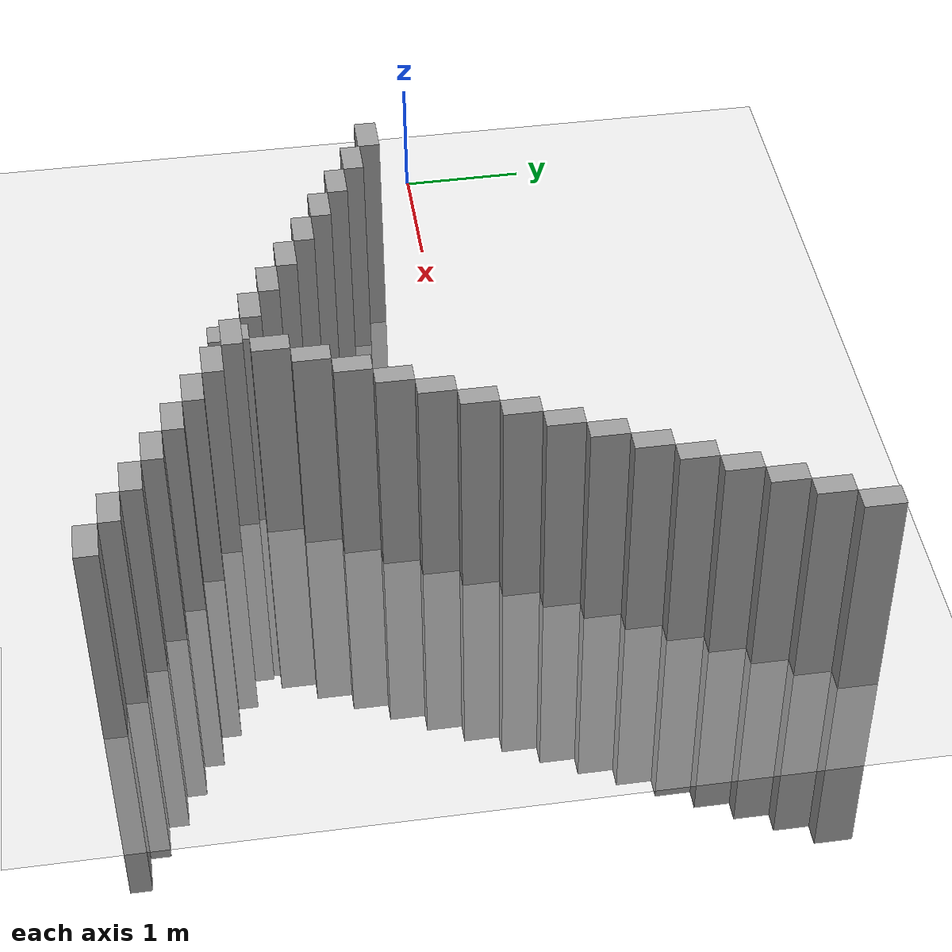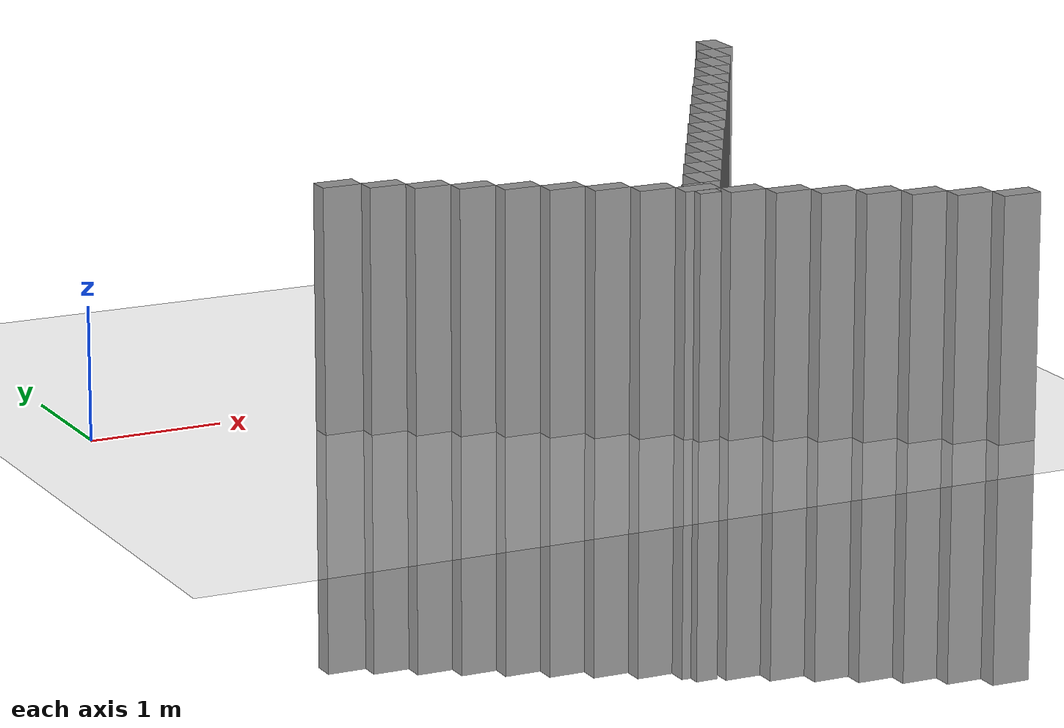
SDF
<sdf version="1.4">
 <world name="high_friction">
  <physics type="ode">
   <gravity>0 0 -9.81</gravity>
   <ode>
    <solver><type>quick</type><iters>250</iters><sor>1.</sor></solver>
    <constraints>
     <cfm>0</cfm>
     <erp>0.2</erp>
     <contact_max_correcting_vel>100</contact_max_correcting_vel>
     <contact_surface_layer>0</contact_surface_layer>
    </constraints>
   </ode>
   <real_time_update_rate>1000</real_time_update_rate>
   <max_step_size>0.001</max_step_size>
   <real_time_factor>1</real_time_factor>
  </physics>
  <include><uri>model://sun</uri></include>
  <model name="ground_plane">
   <static>true</static>
   <link name="link">
    <collision name="collision">
     <geometry><plane><normal>0 0 1</normal><size>100 100</size></plane></geometry>
     <surface>
      <contact><ode><kp>15000</kp><kd>10.0</kd><max_vel>10000.0</max_vel><min_depth>0.0</min_depth></ode></contact>
      <friction><ode><mu>100</mu><mu2>50</mu2></ode></friction>
     </surface>
    </collision>
    <visual name="visual">
     <cast_shadows>false</cast_shadows>
     <geometry><plane><normal>0 0 1</normal><size>100 100</size></plane></geometry>
     <material>
      <script><uri>file://media/materials/scripts/gazebo.material</uri><name>Gazebo/Grey</name></script>
     </material>
    </visual>
   </link>
  </model>
  <include><uri>model://stairs</uri><name>stairs</name><pose>0 -0.5 0 1.57 0 0</pose></include>
  <include><uri>model://stairs</uri><name>stairs</name><pose>4 -3.5 0 1.57 0 1.57</pose></include>
 </world>
</sdf>

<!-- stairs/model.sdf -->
<sdf version='1.7'>
  <model name='stairs'>
    <link name='Stairs'>
      <pose>3 2e-06 0 0 -0 0</pose>
      <self_collide>0</self_collide>
      <enable_wind>0</enable_wind>
      <kinematic>0</kinematic>
      <gravity>1</gravity>
      <inertial>
        <mass>1</mass>
        <pose>0 0 0 0 -0 0</pose>
        <inertia>
          <ixx>1</ixx>
          <ixy>0</ixy>
          <ixz>0</ixz>
          <iyy>1</iyy>
          <iyz>0</iyz>
          <izz>1</izz>
        </inertia>
      </inertial>
      <scale>1 1 1</scale>
      <visual name='Stairs_Visual_14'>
        <pose>2.6775 0 2.1875 0 -0 1.5708</pose>
        <geometry>
          <box>
            <size>3.66 0.28125 0.15625</size>
          </box>
        </geometry>
        <material>
          <script>
            <uri>file://media/materials/scripts/gazebo.material</uri>
            <name>Gazebo/Grey</name>
          </script>
          <ambient>1 1 1 1</ambient>
          <shader type='pixel'>
            <normal_map>__default__</normal_map>
          </shader>
          <diffuse>0.7 0.7 0.7 1</diffuse>
          <specular>0.01 0.01 0.01 1</specular>
          <emissive>0 0 0 1</emissive>
        </material>
        <meta>
          <layer>0</layer>
        </meta>
        <transparency>0</transparency>
        <cast_shadows>1</cast_shadows>
      </visual>
      <visual name='Stairs_Visual_7'>
        <pose>0.70875 0 1.09375 0 -0 1.5708</pose>
        <geometry>
          <box>
            <size>3.66 0.28125 0.15625</size>
          </box>
        </geometry>
        <material>
          <script>
            <uri>file://media/materials/scripts/gazebo.material</uri>
            <name>Gazebo/Grey</name>
          </script>
          <ambient>1 1 1 1</ambient>
          <shader type='pixel'>
            <normal_map>__default__</normal_map>
          </shader>
          <diffuse>0.7 0.7 0.7 1</diffuse>
          <specular>0.01 0.01 0.01 1</specular>
          <emissive>0 0 0 1</emissive>
        </material>
        <meta>
          <layer>0</layer>
        </meta>
        <transparency>0</transparency>
        <cast_shadows>1</cast_shadows>
      </visual>
      <visual name='Stairs_Visual_10'>
        <pose>1.5525 0 1.5625 0 -0 1.5708</pose>
        <geometry>
          <box>
            <size>3.66 0.28125 0.15625</size>
          </box>
        </geometry>
        <material>
          <script>
            <uri>file://media/materials/scripts/gazebo.material</uri>
            <name>Gazebo/Grey</name>
          </script>
          <ambient>1 1 1 1</ambient>
          <shader type='pixel'>
            <normal_map>__default__</normal_map>
          </shader>
          <diffuse>0.7 0.7 0.7 1</diffuse>
          <specular>0.01 0.01 0.01 1</specular>
          <emissive>0 0 0 1</emissive>
        </material>
        <meta>
          <layer>0</layer>
        </meta>
        <transparency>0</transparency>
        <cast_shadows>1</cast_shadows>
      </visual>
      <visual name='Stairs_Visual_11'>
        <pose>1.83375 0 1.71875 0 -0 1.5708</pose>
        <geometry>
          <box>
            <size>3.66 0.28125 0.15625</size>
          </box>
        </geometry>
        <material>
          <script>
            <uri>file://media/materials/scripts/gazebo.material</uri>
            <name>Gazebo/Grey</name>
          </script>
          <ambient>1 1 1 1</ambient>
          <shader type='pixel'>
            <normal_map>__default__</normal_map>
          </shader>
          <diffuse>0.7 0.7 0.7 1</diffuse>
          <specular>0.01 0.01 0.01 1</specular>
          <emissive>0 0 0 1</emissive>
        </material>
        <meta>
          <layer>0</layer>
        </meta>
        <transparency>0</transparency>
        <cast_shadows>1</cast_shadows>
      </visual>
      <visual name='Stairs_Visual_1'>
        <pose>-0.97875 0 0.15625 0 -0 1.5708</pose>
        <geometry>
          <box>
            <size>3.66 0.28125 0.15625</size>
          </box>
        </geometry>
        <material>
          <script>
            <uri>file://media/materials/scripts/gazebo.material</uri>
            <name>Gazebo/Grey</name>
          </script>
          <ambient>1 1 1 1</ambient>
          <shader type='pixel'>
            <normal_map>__default__</normal_map>
          </shader>
          <diffuse>0.7 0.7 0.7 1</diffuse>
          <specular>0.01 0.01 0.01 1</specular>
          <emissive>0 0 0 1</emissive>
        </material>
        <meta>
          <layer>0</layer>
        </meta>
        <transparency>0</transparency>
        <cast_shadows>1</cast_shadows>
      </visual>
      <visual name='Stairs_Visual_8'>
        <pose>0.99 0 1.25 0 -0 1.5708</pose>
        <geometry>
          <box>
            <size>3.66 0.28125 0.15625</size>
          </box>
        </geometry>
        <material>
          <script>
            <uri>file://media/materials/scripts/gazebo.material</uri>
            <name>Gazebo/Grey</name>
          </script>
          <ambient>1 1 1 1</ambient>
          <shader type='pixel'>
            <normal_map>__default__</normal_map>
          </shader>
          <diffuse>0.7 0.7 0.7 1</diffuse>
          <specular>0.01 0.01 0.01 1</specular>
          <emissive>0 0 0 1</emissive>
        </material>
        <meta>
          <layer>0</layer>
        </meta>
        <transparency>0</transparency>
        <cast_shadows>1</cast_shadows>
      </visual>
      <visual name='Stairs_Visual_2'>
        <pose>-0.6975 0 0.3125 0 -0 1.5708</pose>
        <geometry>
          <box>
            <size>3.66 0.28125 0.15625</size>
          </box>
        </geometry>
        <material>
          <script>
            <uri>file://media/materials/scripts/gazebo.material</uri>
            <name>Gazebo/Grey</name>
          </script>
          <ambient>1 1 1 1</ambient>
          <shader type='pixel'>
            <normal_map>__default__</normal_map>
          </shader>
          <diffuse>0.7 0.7 0.7 1</diffuse>
          <specular>0.01 0.01 0.01 1</specular>
          <emissive>0 0 0 1</emissive>
        </material>
        <meta>
          <layer>0</layer>
        </meta>
        <transparency>0</transparency>
        <cast_shadows>1</cast_shadows>
      </visual>
      <visual name='Stairs_Visual_0'>
        <pose>-1.27 0 0.005 0 -0 1.5708</pose>
        <geometry>
          <box>
            <size>3.66 0.3 0.17</size>
          </box>
        </geometry>
        <material>
          <script>
            <uri>file://media/materials/scripts/gazebo.material</uri>
            <name>Gazebo/Grey</name>
          </script>
          <ambient>1 1 1 1</ambient>
          <shader type='pixel'>
            <normal_map>__default__</normal_map>
          </shader>
          <diffuse>0.7 0.7 0.7 1</diffuse>
          <specular>0.01 0.01 0.01 1</specular>
          <emissive>0 0 0 1</emissive>
        </material>
        <meta>
          <layer>0</layer>
        </meta>
        <transparency>0</transparency>
        <cast_shadows>1</cast_shadows>
      </visual>
      <visual name='Stairs_Visual_12'>
        <pose>2.115 0 1.875 0 -0 1.5708</pose>
        <geometry>
          <box>
            <size>3.66 0.28125 0.15625</size>
          </box>
        </geometry>
        <material>
          <script>
            <uri>file://media/materials/scripts/gazebo.material</uri>
            <name>Gazebo/Grey</name>
          </script>
          <ambient>1 1 1 1</ambient>
          <shader type='pixel'>
            <normal_map>__default__</normal_map>
          </shader>
          <diffuse>0.7 0.7 0.7 1</diffuse>
          <specular>0.01 0.01 0.01 1</specular>
          <emissive>0 0 0 1</emissive>
        </material>
        <meta>
          <layer>0</layer>
        </meta>
        <transparency>0</transparency>
        <cast_shadows>1</cast_shadows>
      </visual>
      <visual name='Stairs_Visual_9'>
        <pose>1.27125 0 1.40625 0 -0 1.5708</pose>
        <geometry>
          <box>
            <size>3.66 0.28125 0.15625</size>
          </box>
        </geometry>
        <material>
          <script>
            <uri>file://media/materials/scripts/gazebo.material</uri>
            <name>Gazebo/Grey</name>
          </script>
          <ambient>1 1 1 1</ambient>
          <shader type='pixel'>
            <normal_map>__default__</normal_map>
          </shader>
          <diffuse>0.7 0.7 0.7 1</diffuse>
          <specular>0.01 0.01 0.01 1</specular>
          <emissive>0 0 0 1</emissive>
        </material>
        <meta>
          <layer>0</layer>
        </meta>
        <transparency>0</transparency>
        <cast_shadows>1</cast_shadows>
      </visual>
      <visual name='Stairs_Visual_6'>
        <pose>0.4275 0 0.9375 0 -0 1.5708</pose>
        <geometry>
          <box>
            <size>3.66 0.28125 0.15625</size>
          </box>
        </geometry>
        <material>
          <script>
            <uri>file://media/materials/scripts/gazebo.material</uri>
            <name>Gazebo/Grey</name>
          </script>
          <ambient>1 1 1 1</ambient>
          <shader type='pixel'>
            <normal_map>__default__</normal_map>
          </shader>
          <diffuse>0.7 0.7 0.7 1</diffuse>
          <specular>0.01 0.01 0.01 1</specular>
          <emissive>0 0 0 1</emissive>
        </material>
        <meta>
          <layer>0</layer>
        </meta>
        <transparency>0</transparency>
        <cast_shadows>1</cast_shadows>
      </visual>
      <visual name='Stairs_Visual_13'>
        <pose>2.39625 0 2.03125 0 -0 1.5708</pose>
        <geometry>
          <box>
            <size>3.66 0.28125 0.15625</size>
          </box>
        </geometry>
        <material>
          <script>
            <uri>file://media/materials/scripts/gazebo.material</uri>
            <name>Gazebo/Grey</name>
          </script>
          <ambient>1 1 1 1</ambient>
          <shader type='pixel'>
            <normal_map>__default__</normal_map>
          </shader>
          <diffuse>0.7 0.7 0.7 1</diffuse>
          <specular>0.01 0.01 0.01 1</specular>
          <emissive>0 0 0 1</emissive>
        </material>
        <meta>
          <layer>0</layer>
        </meta>
        <transparency>0</transparency>
        <cast_shadows>1</cast_shadows>
      </visual>
      <visual name='Stairs_Visual_4'>
        <pose>-0.135 0 0.625 0 -0 1.5708</pose>
        <geometry>
          <box>
            <size>3.66 0.28125 0.15625</size>
          </box>
        </geometry>
        <material>
          <script>
            <uri>file://media/materials/scripts/gazebo.material</uri>
            <name>Gazebo/Grey</name>
          </script>
          <ambient>1 1 1 1</ambient>
          <shader type='pixel'>
            <normal_map>__default__</normal_map>
          </shader>
          <diffuse>0.7 0.7 0.7 1</diffuse>
          <specular>0.01 0.01 0.01 1</specular>
          <emissive>0 0 0 1</emissive>
        </material>
        <meta>
          <layer>0</layer>
        </meta>
        <transparency>0</transparency>
        <cast_shadows>1</cast_shadows>
      </visual>
      <visual name='Stairs_Visual_5'>
        <pose>0.14625 0 0.78125 0 -0 1.5708</pose>
        <geometry>
          <box>
            <size>3.66 0.28125 0.15625</size>
          </box>
        </geometry>
        <material>
          <script>
            <uri>file://media/materials/scripts/gazebo.material</uri>
            <name>Gazebo/Grey</name>
          </script>
          <ambient>1 1 1 1</ambient>
          <shader type='pixel'>
            <normal_map>__default__</normal_map>
          </shader>
          <diffuse>0.7 0.7 0.7 1</diffuse>
          <specular>0.01 0.01 0.01 1</specular>
          <emissive>0 0 0 1</emissive>
        </material>
        <meta>
          <layer>0</layer>
        </meta>
        <transparency>0</transparency>
        <cast_shadows>1</cast_shadows>
      </visual>
      <visual name='Stairs_Visual_15'>
        <pose>2.969 0 2.35 0 -0 1.5708</pose>
        <geometry>
          <box>
            <size>3.66 0.3 0.17</size>
          </box>
        </geometry>
        <material>
          <script>
            <uri>file://media/materials/scripts/gazebo.material</uri>
            <name>Gazebo/Grey</name>
          </script>
          <ambient>1 1 1 1</ambient>
          <shader type='pixel'>
            <normal_map>__default__</normal_map>
          </shader>
          <diffuse>0.7 0.7 0.7 1</diffuse>
          <specular>0.01 0.01 0.01 1</specular>
          <emissive>0 0 0 1</emissive>
        </material>
        <meta>
          <layer>0</layer>
        </meta>
        <transparency>0</transparency>
        <cast_shadows>1</cast_shadows>
      </visual>
      <visual name='Stairs_Visual_3'>
        <pose>-0.41625 0 0.46875 0 -0 1.5708</pose>
        <geometry>
          <box>
            <size>3.66 0.28125 0.15625</size>
          </box>
        </geometry>
        <material>
          <script>
            <uri>file://media/materials/scripts/gazebo.material</uri>
            <name>Gazebo/Grey</name>
          </script>
          <ambient>1 1 1 1</ambient>
          <shader type='pixel'>
            <normal_map>__default__</normal_map>
          </shader>
          <diffuse>0.7 0.7 0.7 1</diffuse>
          <specular>0.01 0.01 0.01 1</specular>
          <emissive>0 0 0 1</emissive>
        </material>
        <meta>
          <layer>0</layer>
        </meta>
        <transparency>0</transparency>
        <cast_shadows>1</cast_shadows>
      </visual>
      <collision name='Stairs_Collision_9'>
        <laser_retro>0</laser_retro>
        <max_contacts>10</max_contacts>
        <pose>1.27125 0 1.40625 0 -0 1.5708</pose>
        <geometry>
          <box>
            <size>3.66 0.28125 0.15625</size>
          </box>
        </geometry>
        <surface>
          <friction>
            <ode>
              <mu>1</mu>
              <mu2>1</mu2>
              <fdir1>0 0 0</fdir1>
              <slip1>0</slip1>
              <slip2>0</slip2>
            </ode>
            <torsional>
              <coefficient>1</coefficient>
              <patch_radius>0</patch_radius>
              <surface_radius>0</surface_radius>
              <use_patch_radius>1</use_patch_radius>
              <ode>
                <slip>0</slip>
              </ode>
            </torsional>
          </friction>
          <bounce>
            <restitution_coefficient>0</restitution_coefficient>
            <threshold>1e+06</threshold>
          </bounce>
          <contact>
            <collide_without_contact>0</collide_without_contact>
            <collide_without_contact_bitmask>1</collide_without_contact_bitmask>
            <collide_bitmask>1</collide_bitmask>
            <ode>
              <soft_cfm>0</soft_cfm>
              <soft_erp>0.2</soft_erp>
              <kp>1e+13</kp>
              <kd>1</kd>
              <max_vel>0.01</max_vel>
              <min_depth>0</min_depth>
            </ode>
            <bullet>
              <split_impulse>1</split_impulse>
              <split_impulse_penetration_threshold>-0.01</split_impulse_penetration_threshold>
              <soft_cfm>0</soft_cfm>
              <soft_erp>0.2</soft_erp>
              <kp>1e+13</kp>
              <kd>1</kd>
            </bullet>
          </contact>
        </surface>
      </collision>
      <collision name='Stairs_Collision_1'>
        <laser_retro>0</laser_retro>
        <max_contacts>10</max_contacts>
        <pose>-0.97875 0 0.15625 0 -0 1.5708</pose>
        <geometry>
          <box>
            <size>3.66 0.3 0.1566</size>
          </box>
        </geometry>
        <surface>
          <friction>
            <ode>
              <mu>1</mu>
              <mu2>1</mu2>
              <fdir1>0 0 0</fdir1>
              <slip1>0</slip1>
              <slip2>0</slip2>
            </ode>
            <torsional>
              <coefficient>1</coefficient>
              <patch_radius>0</patch_radius>
              <surface_radius>0</surface_radius>
              <use_patch_radius>1</use_patch_radius>
              <ode>
                <slip>0</slip>
              </ode>
            </torsional>
          </friction>
          <bounce>
            <restitution_coefficient>0</restitution_coefficient>
            <threshold>1e+06</threshold>
          </bounce>
          <contact>
            <collide_without_contact>0</collide_without_contact>
            <collide_without_contact_bitmask>1</collide_without_contact_bitmask>
            <collide_bitmask>1</collide_bitmask>
            <ode>
              <soft_cfm>0</soft_cfm>
              <soft_erp>0.2</soft_erp>
              <kp>1e+13</kp>
              <kd>1</kd>
              <max_vel>0.01</max_vel>
              <min_depth>0</min_depth>
            </ode>
            <bullet>
              <split_impulse>1</split_impulse>
              <split_impulse_penetration_threshold>-0.01</split_impulse_penetration_threshold>
              <soft_cfm>0</soft_cfm>
              <soft_erp>0.2</soft_erp>
              <kp>1e+13</kp>
              <kd>1</kd>
            </bullet>
          </contact>
        </surface>
      </collision>
      <collision name='Stairs_Collision_6'>
        <laser_retro>0</laser_retro>
        <max_contacts>10</max_contacts>
        <pose>0.4275 0 0.9375 0 -0 1.5708</pose>
        <geometry>
          <box>
            <size>3.66 0.28125 0.15625</size>
          </box>
        </geometry>
        <surface>
          <friction>
            <ode>
              <mu>1</mu>
              <mu2>1</mu2>
              <fdir1>0 0 0</fdir1>
              <slip1>0</slip1>
              <slip2>0</slip2>
            </ode>
            <torsional>
              <coefficient>1</coefficient>
              <patch_radius>0</patch_radius>
              <surface_radius>0</surface_radius>
              <use_patch_radius>1</use_patch_radius>
              <ode>
                <slip>0</slip>
              </ode>
            </torsional>
          </friction>
          <bounce>
            <restitution_coefficient>0</restitution_coefficient>
            <threshold>1e+06</threshold>
          </bounce>
          <contact>
            <collide_without_contact>0</collide_without_contact>
            <collide_without_contact_bitmask>1</collide_without_contact_bitmask>
            <collide_bitmask>1</collide_bitmask>
            <ode>
              <soft_cfm>0</soft_cfm>
              <soft_erp>0.2</soft_erp>
              <kp>1e+13</kp>
              <kd>1</kd>
              <max_vel>0.01</max_vel>
              <min_depth>0</min_depth>
            </ode>
            <bullet>
              <split_impulse>1</split_impulse>
              <split_impulse_penetration_threshold>-0.01</split_impulse_penetration_threshold>
              <soft_cfm>0</soft_cfm>
              <soft_erp>0.2</soft_erp>
              <kp>1e+13</kp>
              <kd>1</kd>
            </bullet>
          </contact>
        </surface>
      </collision>
      <collision name='Stairs_Collision_7'>
        <laser_retro>0</laser_retro>
        <max_contacts>10</max_contacts>
        <pose>0.70875 0 1.09375 0 -0 1.5708</pose>
        <geometry>
          <box>
            <size>3.66 0.28125 0.15625</size>
          </box>
        </geometry>
        <surface>
          <friction>
            <ode>
              <mu>1</mu>
              <mu2>1</mu2>
              <fdir1>0 0 0</fdir1>
              <slip1>0</slip1>
              <slip2>0</slip2>
            </ode>
            <torsional>
              <coefficient>1</coefficient>
              <patch_radius>0</patch_radius>
              <surface_radius>0</surface_radius>
              <use_patch_radius>1</use_patch_radius>
              <ode>
                <slip>0</slip>
              </ode>
            </torsional>
          </friction>
          <bounce>
            <restitution_coefficient>0</restitution_coefficient>
            <threshold>1e+06</threshold>
          </bounce>
          <contact>
            <collide_without_contact>0</collide_without_contact>
            <collide_without_contact_bitmask>1</collide_without_contact_bitmask>
            <collide_bitmask>1</collide_bitmask>
            <ode>
              <soft_cfm>0</soft_cfm>
              <soft_erp>0.2</soft_erp>
              <kp>1e+13</kp>
              <kd>1</kd>
              <max_vel>0.01</max_vel>
              <min_depth>0</min_depth>
            </ode>
            <bullet>
              <split_impulse>1</split_impulse>
              <split_impulse_penetration_threshold>-0.01</split_impulse_penetration_threshold>
              <soft_cfm>0</soft_cfm>
              <soft_erp>0.2</soft_erp>
              <kp>1e+13</kp>
              <kd>1</kd>
            </bullet>
          </contact>
        </surface>
      </collision>
      <collision name='Stairs_Collision_10'>
        <laser_retro>0</laser_retro>
        <max_contacts>10</max_contacts>
        <pose>1.5525 0 1.5625 0 -0 1.5708</pose>
        <geometry>
          <box>
            <size>3.66 0.28125 0.15625</size>
          </box>
        </geometry>
        <surface>
          <friction>
            <ode>
              <mu>1</mu>
              <mu2>1</mu2>
              <fdir1>0 0 0</fdir1>
              <slip1>0</slip1>
              <slip2>0</slip2>
            </ode>
            <torsional>
              <coefficient>1</coefficient>
              <patch_radius>0</patch_radius>
              <surface_radius>0</surface_radius>
              <use_patch_radius>1</use_patch_radius>
              <ode>
                <slip>0</slip>
              </ode>
            </torsional>
          </friction>
          <bounce>
            <restitution_coefficient>0</restitution_coefficient>
            <threshold>1e+06</threshold>
          </bounce>
          <contact>
            <collide_without_contact>0</collide_without_contact>
            <collide_without_contact_bitmask>1</collide_without_contact_bitmask>
            <collide_bitmask>1</collide_bitmask>
            <ode>
              <soft_cfm>0</soft_cfm>
              <soft_erp>0.2</soft_erp>
              <kp>1e+13</kp>
              <kd>1</kd>
              <max_vel>0.01</max_vel>
              <min_depth>0</min_depth>
            </ode>
            <bullet>
              <split_impulse>1</split_impulse>
              <split_impulse_penetration_threshold>-0.01</split_impulse_penetration_threshold>
              <soft_cfm>0</soft_cfm>
              <soft_erp>0.2</soft_erp>
              <kp>1e+13</kp>
              <kd>1</kd>
            </bullet>
          </contact>
        </surface>
      </collision>
      <collision name='Stairs_Collision_5'>
        <laser_retro>0</laser_retro>
        <max_contacts>10</max_contacts>
        <pose>0.14625 0 0.78125 0 -0 1.5708</pose>
        <geometry>
          <box>
            <size>3.66 0.28125 0.15625</size>
          </box>
        </geometry>
        <surface>
          <friction>
            <ode>
              <mu>1</mu>
              <mu2>1</mu2>
              <fdir1>0 0 0</fdir1>
              <slip1>0</slip1>
              <slip2>0</slip2>
            </ode>
            <torsional>
              <coefficient>1</coefficient>
              <patch_radius>0</patch_radius>
              <surface_radius>0</surface_radius>
              <use_patch_radius>1</use_patch_radius>
              <ode>
                <slip>0</slip>
              </ode>
            </torsional>
          </friction>
          <bounce>
            <restitution_coefficient>0</restitution_coefficient>
            <threshold>1e+06</threshold>
          </bounce>
          <contact>
            <collide_without_contact>0</collide_without_contact>
            <collide_without_contact_bitmask>1</collide_without_contact_bitmask>
            <collide_bitmask>1</collide_bitmask>
            <ode>
              <soft_cfm>0</soft_cfm>
              <soft_erp>0.2</soft_erp>
              <kp>1e+13</kp>
              <kd>1</kd>
              <max_vel>0.01</max_vel>
              <min_depth>0</min_depth>
            </ode>
            <bullet>
              <split_impulse>1</split_impulse>
              <split_impulse_penetration_threshold>-0.01</split_impulse_penetration_threshold>
              <soft_cfm>0</soft_cfm>
              <soft_erp>0.2</soft_erp>
              <kp>1e+13</kp>
              <kd>1</kd>
            </bullet>
          </contact>
        </surface>
      </collision>
      <collision name='Stairs_Collision_2'>
        <laser_retro>0</laser_retro>
        <max_contacts>10</max_contacts>
        <pose>-0.6975 0 0.3125 0 -0 1.5708</pose>
        <geometry>
          <box>
            <size>3.66 0.28125 0.15625</size>
          </box>
        </geometry>
        <surface>
          <friction>
            <ode>
              <mu>1</mu>
              <mu2>1</mu2>
              <fdir1>0 0 0</fdir1>
              <slip1>0</slip1>
              <slip2>0</slip2>
            </ode>
            <torsional>
              <coefficient>1</coefficient>
              <patch_radius>0</patch_radius>
              <surface_radius>0</surface_radius>
              <use_patch_radius>1</use_patch_radius>
              <ode>
                <slip>0</slip>
              </ode>
            </torsional>
          </friction>
          <bounce>
            <restitution_coefficient>0</restitution_coefficient>
            <threshold>1e+06</threshold>
          </bounce>
          <contact>
            <collide_without_contact>0</collide_without_contact>
            <collide_without_contact_bitmask>1</collide_without_contact_bitmask>
            <collide_bitmask>1</collide_bitmask>
            <ode>
              <soft_cfm>0</soft_cfm>
              <soft_erp>0.2</soft_erp>
              <kp>1e+13</kp>
              <kd>1</kd>
              <max_vel>0.01</max_vel>
              <min_depth>0</min_depth>
            </ode>
            <bullet>
              <split_impulse>1</split_impulse>
              <split_impulse_penetration_threshold>-0.01</split_impulse_penetration_threshold>
              <soft_cfm>0</soft_cfm>
              <soft_erp>0.2</soft_erp>
              <kp>1e+13</kp>
              <kd>1</kd>
            </bullet>
          </contact>
        </surface>
      </collision>
      <collision name='Stairs_Collision_8'>
        <laser_retro>0</laser_retro>
        <max_contacts>10</max_contacts>
        <pose>0.99 0 1.25 0 -0 1.5708</pose>
        <geometry>
          <box>
            <size>3.66 0.28125 0.15625</size>
          </box>
        </geometry>
        <surface>
          <friction>
            <ode>
              <mu>1</mu>
              <mu2>1</mu2>
              <fdir1>0 0 0</fdir1>
              <slip1>0</slip1>
              <slip2>0</slip2>
            </ode>
            <torsional>
              <coefficient>1</coefficient>
              <patch_radius>0</patch_radius>
              <surface_radius>0</surface_radius>
              <use_patch_radius>1</use_patch_radius>
              <ode>
                <slip>0</slip>
              </ode>
            </torsional>
          </friction>
          <bounce>
            <restitution_coefficient>0</restitution_coefficient>
            <threshold>1e+06</threshold>
          </bounce>
          <contact>
            <collide_without_contact>0</collide_without_contact>
            <collide_without_contact_bitmask>1</collide_without_contact_bitmask>
            <collide_bitmask>1</collide_bitmask>
            <ode>
              <soft_cfm>0</soft_cfm>
              <soft_erp>0.2</soft_erp>
              <kp>1e+13</kp>
              <kd>1</kd>
              <max_vel>0.01</max_vel>
              <min_depth>0</min_depth>
            </ode>
            <bullet>
              <split_impulse>1</split_impulse>
              <split_impulse_penetration_threshold>-0.01</split_impulse_penetration_threshold>
              <soft_cfm>0</soft_cfm>
              <soft_erp>0.2</soft_erp>
              <kp>1e+13</kp>
              <kd>1</kd>
            </bullet>
          </contact>
        </surface>
      </collision>
      <collision name='Stairs_Collision_4'>
        <laser_retro>0</laser_retro>
        <max_contacts>10</max_contacts>
        <pose>-0.135 0 0.625 0 -0 1.5708</pose>
        <geometry>
          <box>
            <size>3.66 0.28125 0.15625</size>
          </box>
        </geometry>
        <surface>
          <friction>
            <ode>
              <mu>1</mu>
              <mu2>1</mu2>
              <fdir1>0 0 0</fdir1>
              <slip1>0</slip1>
              <slip2>0</slip2>
            </ode>
            <torsional>
              <coefficient>1</coefficient>
              <patch_radius>0</patch_radius>
              <surface_radius>0</surface_radius>
              <use_patch_radius>1</use_patch_radius>
              <ode>
                <slip>0</slip>
              </ode>
            </torsional>
          </friction>
          <bounce>
            <restitution_coefficient>0</restitution_coefficient>
            <threshold>1e+06</threshold>
          </bounce>
          <contact>
            <collide_without_contact>0</collide_without_contact>
            <collide_without_contact_bitmask>1</collide_without_contact_bitmask>
            <collide_bitmask>1</collide_bitmask>
            <ode>
              <soft_cfm>0</soft_cfm>
              <soft_erp>0.2</soft_erp>
              <kp>1e+13</kp>
              <kd>1</kd>
              <max_vel>0.01</max_vel>
              <min_depth>0</min_depth>
            </ode>
            <bullet>
              <split_impulse>1</split_impulse>
              <split_impulse_penetration_threshold>-0.01</split_impulse_penetration_threshold>
              <soft_cfm>0</soft_cfm>
              <soft_erp>0.2</soft_erp>
              <kp>1e+13</kp>
              <kd>1</kd>
            </bullet>
          </contact>
        </surface>
      </collision>
      <collision name='Stairs_Collision_11'>
        <laser_retro>0</laser_retro>
        <max_contacts>10</max_contacts>
        <pose>1.83375 0 1.71875 0 -0 1.5708</pose>
        <geometry>
          <box>
            <size>3.66 0.28125 0.15625</size>
          </box>
        </geometry>
        <surface>
          <friction>
            <ode>
              <mu>1</mu>
              <mu2>1</mu2>
              <fdir1>0 0 0</fdir1>
              <slip1>0</slip1>
              <slip2>0</slip2>
            </ode>
            <torsional>
              <coefficient>1</coefficient>
              <patch_radius>0</patch_radius>
              <surface_radius>0</surface_radius>
              <use_patch_radius>1</use_patch_radius>
              <ode>
                <slip>0</slip>
              </ode>
            </torsional>
          </friction>
          <bounce>
            <restitution_coefficient>0</restitution_coefficient>
            <threshold>1e+06</threshold>
          </bounce>
          <contact>
            <collide_without_contact>0</collide_without_contact>
            <collide_without_contact_bitmask>1</collide_without_contact_bitmask>
            <collide_bitmask>1</collide_bitmask>
            <ode>
              <soft_cfm>0</soft_cfm>
              <soft_erp>0.2</soft_erp>
              <kp>1e+13</kp>
              <kd>1</kd>
              <max_vel>0.01</max_vel>
              <min_depth>0</min_depth>
            </ode>
            <bullet>
              <split_impulse>1</split_impulse>
              <split_impulse_penetration_threshold>-0.01</split_impulse_penetration_threshold>
              <soft_cfm>0</soft_cfm>
              <soft_erp>0.2</soft_erp>
              <kp>1e+13</kp>
              <kd>1</kd>
            </bullet>
          </contact>
        </surface>
      </collision>
      <collision name='Stairs_Collision_13'>
        <laser_retro>0</laser_retro>
        <max_contacts>10</max_contacts>
        <pose>2.39625 0 2.03125 0 -0 1.5708</pose>
        <geometry>
          <box>
            <size>3.66 0.28125 0.15625</size>
          </box>
        </geometry>
        <surface>
          <friction>
            <ode>
              <mu>1</mu>
              <mu2>1</mu2>
              <fdir1>0 0 0</fdir1>
              <slip1>0</slip1>
              <slip2>0</slip2>
            </ode>
            <torsional>
              <coefficient>1</coefficient>
              <patch_radius>0</patch_radius>
              <surface_radius>0</surface_radius>
              <use_patch_radius>1</use_patch_radius>
              <ode>
                <slip>0</slip>
              </ode>
            </torsional>
          </friction>
          <bounce>
            <restitution_coefficient>0</restitution_coefficient>
            <threshold>1e+06</threshold>
          </bounce>
          <contact>
            <collide_without_contact>0</collide_without_contact>
            <collide_without_contact_bitmask>1</collide_without_contact_bitmask>
            <collide_bitmask>1</collide_bitmask>
            <ode>
              <soft_cfm>0</soft_cfm>
              <soft_erp>0.2</soft_erp>
              <kp>1e+13</kp>
              <kd>1</kd>
              <max_vel>0.01</max_vel>
              <min_depth>0</min_depth>
            </ode>
            <bullet>
              <split_impulse>1</split_impulse>
              <split_impulse_penetration_threshold>-0.01</split_impulse_penetration_threshold>
              <soft_cfm>0</soft_cfm>
              <soft_erp>0.2</soft_erp>
              <kp>1e+13</kp>
              <kd>1</kd>
            </bullet>
          </contact>
        </surface>
      </collision>
      <collision name='Stairs_Collision_0'>
        <laser_retro>0</laser_retro>
        <max_contacts>10</max_contacts>
        <pose>-1.27 0 -0.005 0 -0 1.5708</pose>
        <geometry>
          <box>
            <size>3.66 0.3 0.2</size>
          </box>
        </geometry>
        <surface>
          <friction>
            <ode>
              <mu>1</mu>
              <mu2>1</mu2>
              <fdir1>0 0 0</fdir1>
              <slip1>0</slip1>
              <slip2>0</slip2>
            </ode>
            <torsional>
              <coefficient>1</coefficient>
              <patch_radius>0</patch_radius>
              <surface_radius>0</surface_radius>
              <use_patch_radius>1</use_patch_radius>
              <ode>
                <slip>0</slip>
              </ode>
            </torsional>
          </friction>
          <bounce>
            <restitution_coefficient>0</restitution_coefficient>
            <threshold>1e+06</threshold>
          </bounce>
          <contact>
            <collide_without_contact>0</collide_without_contact>
            <collide_without_contact_bitmask>1</collide_without_contact_bitmask>
            <collide_bitmask>1</collide_bitmask>
            <ode>
              <soft_cfm>0</soft_cfm>
              <soft_erp>0.2</soft_erp>
              <kp>1e+13</kp>
              <kd>1</kd>
              <max_vel>0.01</max_vel>
              <min_depth>0</min_depth>
            </ode>
            <bullet>
              <split_impulse>1</split_impulse>
              <split_impulse_penetration_threshold>-0.01</split_impulse_penetration_threshold>
              <soft_cfm>0</soft_cfm>
              <soft_erp>0.2</soft_erp>
              <kp>1e+13</kp>
              <kd>1</kd>
            </bullet>
          </contact>
        </surface>
      </collision>
      <collision name='Stairs_Collision_3'>
        <laser_retro>0</laser_retro>
        <max_contacts>10</max_contacts>
        <pose>-0.41625 0 0.46875 0 -0 1.5708</pose>
        <geometry>
          <box>
            <size>3.66 0.28125 0.15625</size>
          </box>
        </geometry>
        <surface>
          <friction>
            <ode>
              <mu>1</mu>
              <mu2>1</mu2>
              <fdir1>0 0 0</fdir1>
              <slip1>0</slip1>
              <slip2>0</slip2>
            </ode>
            <torsional>
              <coefficient>1</coefficient>
              <patch_radius>0</patch_radius>
              <surface_radius>0</surface_radius>
              <use_patch_radius>1</use_patch_radius>
              <ode>
                <slip>0</slip>
              </ode>
            </torsional>
          </friction>
          <bounce>
            <restitution_coefficient>0</restitution_coefficient>
            <threshold>1e+06</threshold>
          </bounce>
          <contact>
            <collide_without_contact>0</collide_without_contact>
            <collide_without_contact_bitmask>1</collide_without_contact_bitmask>
            <collide_bitmask>1</collide_bitmask>
            <ode>
              <soft_cfm>0</soft_cfm>
              <soft_erp>0.2</soft_erp>
              <kp>1e+13</kp>
              <kd>1</kd>
              <max_vel>0.01</max_vel>
              <min_depth>0</min_depth>
            </ode>
            <bullet>
              <split_impulse>1</split_impulse>
              <split_impulse_penetration_threshold>-0.01</split_impulse_penetration_threshold>
              <soft_cfm>0</soft_cfm>
              <soft_erp>0.2</soft_erp>
              <kp>1e+13</kp>
              <kd>1</kd>
            </bullet>
          </contact>
        </surface>
      </collision>
      <collision name='Stairs_Collision_12'>
        <laser_retro>0</laser_retro>
        <max_contacts>10</max_contacts>
        <pose>2.115 0 1.875 0 -0 1.5708</pose>
        <geometry>
          <box>
            <size>3.66 0.28125 0.15625</size>
          </box>
        </geometry>
        <surface>
          <friction>
            <ode>
              <mu>1</mu>
              <mu2>1</mu2>
              <fdir1>0 0 0</fdir1>
              <slip1>0</slip1>
              <slip2>0</slip2>
            </ode>
            <torsional>
              <coefficient>1</coefficient>
              <patch_radius>0</patch_radius>
              <surface_radius>0</surface_radius>
              <use_patch_radius>1</use_patch_radius>
              <ode>
                <slip>0</slip>
              </ode>
            </torsional>
          </friction>
          <bounce>
            <restitution_coefficient>0</restitution_coefficient>
            <threshold>1e+06</threshold>
          </bounce>
          <contact>
            <collide_without_contact>0</collide_without_contact>
            <collide_without_contact_bitmask>1</collide_without_contact_bitmask>
            <collide_bitmask>1</collide_bitmask>
            <ode>
              <soft_cfm>0</soft_cfm>
              <soft_erp>0.2</soft_erp>
              <kp>1e+13</kp>
              <kd>1</kd>
              <max_vel>0.01</max_vel>
              <min_depth>0</min_depth>
            </ode>
            <bullet>
              <split_impulse>1</split_impulse>
              <split_impulse_penetration_threshold>-0.01</split_impulse_penetration_threshold>
              <soft_cfm>0</soft_cfm>
              <soft_erp>0.2</soft_erp>
              <kp>1e+13</kp>
              <kd>1</kd>
            </bullet>
          </contact>
        </surface>
      </collision>
      <collision name='Stairs_Collision_14'>
        <laser_retro>0</laser_retro>
        <max_contacts>10</max_contacts>
        <pose>2.6775 0 2.1875 0 -0 1.5708</pose>
        <geometry>
          <box>
            <size>3.66 0.28125 0.15625</size>
          </box>
        </geometry>
        <surface>
          <friction>
            <ode>
              <mu>1</mu>
              <mu2>1</mu2>
              <fdir1>0 0 0</fdir1>
              <slip1>0</slip1>
              <slip2>0</slip2>
            </ode>
            <torsional>
              <coefficient>1</coefficient>
              <patch_radius>0</patch_radius>
              <surface_radius>0</surface_radius>
              <use_patch_radius>1</use_patch_radius>
              <ode>
                <slip>0</slip>
              </ode>
            </torsional>
          </friction>
          <bounce>
            <restitution_coefficient>0</restitution_coefficient>
            <threshold>1e+06</threshold>
          </bounce>
          <contact>
            <collide_without_contact>0</collide_without_contact>
            <collide_without_contact_bitmask>1</collide_without_contact_bitmask>
            <collide_bitmask>1</collide_bitmask>
            <ode>
              <soft_cfm>0</soft_cfm>
              <soft_erp>0.2</soft_erp>
              <kp>1e+13</kp>
              <kd>1</kd>
              <max_vel>0.01</max_vel>
              <min_depth>0</min_depth>
            </ode>
            <bullet>
              <split_impulse>1</split_impulse>
              <split_impulse_penetration_threshold>-0.01</split_impulse_penetration_threshold>
              <soft_cfm>0</soft_cfm>
              <soft_erp>0.2</soft_erp>
              <kp>1e+13</kp>
              <kd>1</kd>
            </bullet>
          </contact>
        </surface>
      </collision>
      <collision name='Stairs_Collision_15'>
        <laser_retro>0</laser_retro>
        <max_contacts>10</max_contacts>
        <pose>2.969 0 2.35 0 -0 1.5708</pose>
        <geometry>
          <box>
            <size>3.66 0.3 0.17</size>
          </box>
        </geometry>
        <surface>
          <friction>
            <ode>
              <mu>1</mu>
              <mu2>1</mu2>
              <fdir1>0 0 0</fdir1>
              <slip1>0</slip1>
              <slip2>0</slip2>
            </ode>
            <torsional>
              <coefficient>1</coefficient>
              <patch_radius>0</patch_radius>
              <surface_radius>0</surface_radius>
              <use_patch_radius>1</use_patch_radius>
              <ode>
                <slip>0</slip>
              </ode>
            </torsional>
          </friction>
          <bounce>
            <restitution_coefficient>0</restitution_coefficient>
            <threshold>1e+06</threshold>
          </bounce>
          <contact>
            <collide_without_contact>0</collide_without_contact>
            <collide_without_contact_bitmask>1</collide_without_contact_bitmask>
            <collide_bitmask>1</collide_bitmask>
            <ode>
              <soft_cfm>0</soft_cfm>
              <soft_erp>0.2</soft_erp>
              <kp>1e+13</kp>
              <kd>1</kd>
              <max_vel>0.01</max_vel>
              <min_depth>0</min_depth>
            </ode>
            <bullet>
              <split_impulse>1</split_impulse>
              <split_impulse_penetration_threshold>-0.01</split_impulse_penetration_threshold>
              <soft_cfm>0</soft_cfm>
              <soft_erp>0.2</soft_erp>
              <kp>1e+13</kp>
              <kd>1</kd>
            </bullet>
          </contact>
        </surface>
      </collision>
    </link>
    <static>1</static>
    <allow_auto_disable>1</allow_auto_disable>
  </model>
</sdf>
